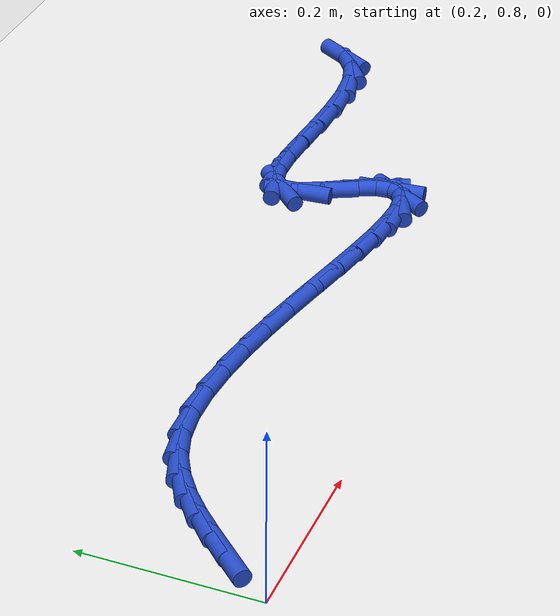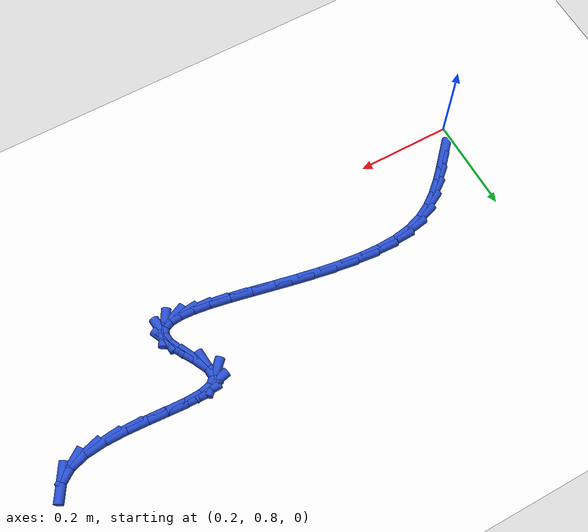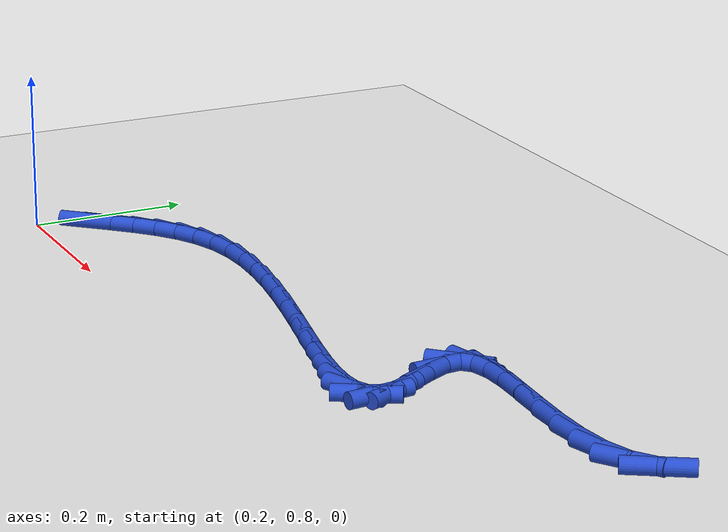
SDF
<sdf version="1.6">
 <world name="default">
  <model name="ground_plane">
   <static>1</static>
   <link name="link">
    <collision name="collision">
     <geometry><plane><normal>0 0 1</normal><size>100 100</size></plane></geometry>
     <surface><friction><ode><mu>100</mu><mu2>50</mu2></ode></friction></surface>
    </collision>
    <visual name="visual">
     <cast_shadows>0</cast_shadows>
     <geometry><plane><normal>0 0 1</normal><size>100 100</size></plane></geometry>
     <material>
      <script><uri>file://media/materials/scripts/gazebo.material</uri><name>Gazebo/WhiteGlow</name></script>
     </material>
    </visual>
   </link>
  </model>
  <model name="line">
   <link name="link_29">
    <pose>0.23982771956075666 0.8588007215189424 0.01 0 1.57 0.8241641632022959</pose>
    <collision name="collision">
     <geometry><cylinder><radius>0.01</radius><length>0.08</length></cylinder></geometry>
    </collision>
    <visual name="visual">
     <material>
      <script><name>Gazebo/Blue</name><uri>file://media/materials/scripts/gazebo.material</uri></script>
     </material>
     <geometry><cylinder><radius>0.01</radius><length>0.08</length></cylinder></geometry>
    </visual>
   </link>
   <link name="link_30">
    <pose>0.2616917057526232 0.8824291506320963 0.01 0 1.57 0.796854420594403</pose>
    <collision name="collision">
     <geometry><cylinder><radius>0.01</radius><length>0.08</length></cylinder></geometry>
    </collision>
    <visual name="visual">
     <material>
      <script><name>Gazebo/Blue</name><uri>file://media/materials/scripts/gazebo.material</uri></script>
     </material>
     <geometry><cylinder><radius>0.01</radius><length>0.08</length></cylinder></geometry>
    </visual>
   </link>
   <link name="link_31">
    <pose>0.28399439541838345 0.9052487959894997 0.01 0 1.57 0.7316204973585401</pose>
    <collision name="collision">
     <geometry><cylinder><radius>0.01</radius><length>0.08</length></cylinder></geometry>
    </collision>
    <visual name="visual">
     <material>
      <script><name>Gazebo/Blue</name><uri>file://media/materials/scripts/gazebo.material</uri></script>
     </material>
     <geometry><cylinder><radius>0.01</radius><length>0.08</length></cylinder></geometry>
    </visual>
   </link>
   <link name="link_32">
    <pose>0.3075503212400427 0.926398250482711 0.01 0 1.57 0.6283479717193791</pose>
    <collision name="collision">
     <geometry><cylinder><radius>0.01</radius><length>0.08</length></cylinder></geometry>
    </collision>
    <visual name="visual">
     <material>
      <script><name>Gazebo/Blue</name><uri>file://media/materials/scripts/gazebo.material</uri></script>
     </material>
     <geometry><cylinder><radius>0.01</radius><length>0.08</length></cylinder></geometry>
    </visual>
   </link>
   <link name="link_33">
    <pose>0.3331740158996063 0.945016107003289 0.01 0 1.57 0.49054853260155695</pose>
    <collision name="collision">
     <geometry><cylinder><radius>0.01</radius><length>0.08</length></cylinder></geometry>
    </collision>
    <visual name="visual">
     <material>
      <script><name>Gazebo/Blue</name><uri>file://media/materials/scripts/gazebo.material</uri></script>
     </material>
     <geometry><cylinder><radius>0.01</radius><length>0.08</length></cylinder></geometry>
    </visual>
   </link>
   <link name="link_34">
    <pose>0.3616800120790796 0.9602409584427918 0.01 0 1.57 0.32833620386717977</pose>
    <collision name="collision">
     <geometry><cylinder><radius>0.01</radius><length>0.08</length></cylinder></geometry>
    </collision>
    <visual name="visual">
     <material>
      <script><name>Gazebo/Blue</name><uri>file://media/materials/scripts/gazebo.material</uri></script>
     </material>
     <geometry><cylinder><radius>0.01</radius><length>0.08</length></cylinder></geometry>
    </visual>
   </link>
   <link name="link_35">
    <pose>0.393882842460468 0.9712113976927781 0.01 0 1.57 0.16401270620343095</pose>
    <collision name="collision">
     <geometry><cylinder><radius>0.01</radius><length>0.08</length></cylinder></geometry>
    </collision>
    <visual name="visual">
     <material>
      <script><name>Gazebo/Blue</name><uri>file://media/materials/scripts/gazebo.material</uri></script>
     </material>
     <geometry><cylinder><radius>0.01</radius><length>0.08</length></cylinder></geometry>
    </visual>
   </link>
   <link name="link_36">
    <pose>0.4303977751358432 0.9772545957248768 0.01 0 1.57 0.03739849756958112</pose>
    <collision name="collision">
     <geometry><cylinder><radius>0.01</radius><length>0.08</length></cylinder></geometry>
    </collision>
    <visual name="visual">
     <material>
      <script><name>Gazebo/Blue</name><uri>file://media/materials/scripts/gazebo.material</uri></script>
     </material>
     <geometry><cylinder><radius>0.01</radius><length>0.08</length></cylinder></geometry>
    </visual>
   </link>
   <link name="link_37">
    <pose>0.470714350804725 0.9787630784262082 0.01 0 1.57 -0.05225091464127412</pose>
    <collision name="collision">
     <geometry><cylinder><radius>0.01</radius><length>0.08</length></cylinder></geometry>
    </collision>
    <visual name="visual">
     <material>
      <script><name>Gazebo/Blue</name><uri>file://media/materials/scripts/gazebo.material</uri></script>
     </material>
     <geometry><cylinder><radius>0.01</radius><length>0.08</length></cylinder></geometry>
    </visual>
   </link>
   <link name="link_38">
    <pose>0.5139271915559751 0.9765031109087444 0.01 0 1.57 -0.11588036690892356</pose>
    <collision name="collision">
     <geometry><cylinder><radius>0.01</radius><length>0.08</length></cylinder></geometry>
    </collision>
    <visual name="visual">
     <material>
      <script><name>Gazebo/Blue</name><uri>file://media/materials/scripts/gazebo.material</uri></script>
     </material>
     <geometry><cylinder><radius>0.01</radius><length>0.08</length></cylinder></geometry>
    </visual>
   </link>
   <link name="link_39">
    <pose>0.5591304921454062 0.9712413626997422 0.01 0 1.57 -0.16056706052890735</pose>
    <collision name="collision">
     <geometry><cylinder><radius>0.01</radius><length>0.08</length></cylinder></geometry>
    </collision>
    <visual name="visual">
     <material>
      <script><name>Gazebo/Blue</name><uri>file://media/materials/scripts/gazebo.material</uri></script>
     </material>
     <geometry><cylinder><radius>0.01</radius><length>0.08</length></cylinder></geometry>
    </visual>
   </link>
   <link name="link_40">
    <pose>0.6054184473288297 0.9637445033264574 0.01 0 1.57 -0.1905978855281085</pose>
    <collision name="collision">
     <geometry><cylinder><radius>0.01</radius><length>0.08</length></cylinder></geometry>
    </collision>
    <visual name="visual">
     <material>
      <script><name>Gazebo/Blue</name><uri>file://media/materials/scripts/gazebo.material</uri></script>
     </material>
     <geometry><cylinder><radius>0.01</radius><length>0.08</length></cylinder></geometry>
    </visual>
   </link>
   <link name="link_41">
    <pose>0.651885251862058 0.954779202316149 0.01 0 1.57 -0.20828390359519258</pose>
    <collision name="collision">
     <geometry><cylinder><radius>0.01</radius><length>0.08</length></cylinder></geometry>
    </collision>
    <visual name="visual">
     <material>
      <script><name>Gazebo/Blue</name><uri>file://media/materials/scripts/gazebo.material</uri></script>
     </material>
     <geometry><cylinder><radius>0.01</radius><length>0.08</length></cylinder></geometry>
    </visual>
   </link>
   <link name="link_42">
    <pose>0.6976251005009027 0.9451121291960721 0.01 0 1.57 -0.21435678839201483</pose>
    <collision name="collision">
     <geometry><cylinder><radius>0.01</radius><length>0.08</length></cylinder></geometry>
    </collision>
    <visual name="visual">
     <material>
      <script><name>Gazebo/Blue</name><uri>file://media/materials/scripts/gazebo.material</uri></script>
     </material>
     <geometry><cylinder><radius>0.01</radius><length>0.08</length></cylinder></geometry>
    </visual>
   </link>
   <link name="link_43">
    <pose>0.7417321880011751 0.9355099534934844 0.01 0 1.57 -0.2079417215046066</pose>
    <collision name="collision">
     <geometry><cylinder><radius>0.01</radius><length>0.08</length></cylinder></geometry>
    </collision>
    <visual name="visual">
     <material>
      <script><name>Gazebo/Blue</name><uri>file://media/materials/scripts/gazebo.material</uri></script>
     </material>
     <geometry><cylinder><radius>0.01</radius><length>0.08</length></cylinder></geometry>
    </visual>
   </link>
   <link name="link_44">
    <pose>0.7833007091186882 0.9267393447356425 0.01 0 1.57 -0.18595841066379873</pose>
    <collision name="collision">
     <geometry><cylinder><radius>0.01</radius><length>0.08</length></cylinder></geometry>
    </collision>
    <visual name="visual">
     <material>
      <script><name>Gazebo/Blue</name><uri>file://media/materials/scripts/gazebo.material</uri></script>
     </material>
     <geometry><cylinder><radius>0.01</radius><length>0.08</length></cylinder></geometry>
    </visual>
   </link>
   <link name="link_45">
    <pose>0.8214248586092534 0.9195669724498038 0.01 0 1.57 -0.14139251127535413</pose>
    <collision name="collision">
     <geometry><cylinder><radius>0.01</radius><length>0.08</length></cylinder></geometry>
    </collision>
    <visual name="visual">
     <material>
      <script><name>Gazebo/Blue</name><uri>file://media/materials/scripts/gazebo.material</uri></script>
     </material>
     <geometry><cylinder><radius>0.01</radius><length>0.08</length></cylinder></geometry>
    </visual>
   </link>
   <link name="link_46">
    <pose>0.8551988312286829 0.9147595061632251 0.01 0 1.57 -0.05869857990196866</pose>
    <collision name="collision">
     <geometry><cylinder><radius>0.01</radius><length>0.08</length></cylinder></geometry>
    </collision>
    <visual name="visual">
     <material>
      <script><name>Gazebo/Blue</name><uri>file://media/materials/scripts/gazebo.material</uri></script>
     </material>
     <geometry><cylinder><radius>0.01</radius><length>0.08</length></cylinder></geometry>
    </visual>
   </link>
   <link name="link_47">
    <pose>0.8837168217327889 0.9130836154031634 0.01 0 1.57 0.0990810999384162</pose>
    <collision name="collision">
     <geometry><cylinder><radius>0.01</radius><length>0.08</length></cylinder></geometry>
    </collision>
    <visual name="visual">
     <material>
      <script><name>Gazebo/Blue</name><uri>file://media/materials/scripts/gazebo.material</uri></script>
     </material>
     <geometry><cylinder><radius>0.01</radius><length>0.08</length></cylinder></geometry>
    </visual>
   </link>
   <link name="link_48">
    <pose>0.9060730248773824 0.915305969696875 0.01 0 1.57 0.4232560459164627</pose>
    <collision name="collision">
     <geometry><cylinder><radius>0.01</radius><length>0.08</length></cylinder></geometry>
    </collision>
    <visual name="visual">
     <material>
      <script><name>Gazebo/Blue</name><uri>file://media/materials/scripts/gazebo.material</uri></script>
     </material>
     <geometry><cylinder><radius>0.01</radius><length>0.08</length></cylinder></geometry>
    </visual>
   </link>
   <link name="link_49">
    <pose>0.9213616354182765 0.9221932385716181 0.01 0 1.57 1.034931450594322</pose>
    <collision name="collision">
     <geometry><cylinder><radius>0.01</radius><length>0.08</length></cylinder></geometry>
    </collision>
    <visual name="visual">
     <material>
      <script><name>Gazebo/Blue</name><uri>file://media/materials/scripts/gazebo.material</uri></script>
     </material>
     <geometry><cylinder><radius>0.01</radius><length>0.08</length></cylinder></geometry>
    </visual>
   </link>
   <link name="link_50">
    <pose>0.9286768481112821 0.9345120915546483 0.01 0 1.57 -1.4865343956009753</pose>
    <collision name="collision">
     <geometry><cylinder><radius>0.01</radius><length>0.08</length></cylinder></geometry>
    </collision>
    <visual name="visual">
     <material>
      <script><name>Gazebo/Blue</name><uri>file://media/materials/scripts/gazebo.material</uri></script>
     </material>
     <geometry><cylinder><radius>0.01</radius><length>0.08</length></cylinder></geometry>
    </visual>
   </link>
   <link name="link_51">
    <pose>0.927112857712212 0.9530291981732235 0.01 0 1.57 -1.1547413814609242</pose>
    <collision name="collision">
     <geometry><cylinder><radius>0.01</radius><length>0.08</length></cylinder></geometry>
    </collision>
    <visual name="visual">
     <material>
      <script><name>Gazebo/Blue</name><uri>file://media/materials/scripts/gazebo.material</uri></script>
     </material>
     <geometry><cylinder><radius>0.01</radius><length>0.08</length></cylinder></geometry>
    </visual>
   </link>
   <link name="link_52">
    <pose>0.9158919618264509 0.9784245140293565 0.01 0 1.57 -1.0504726478481072</pose>
    <collision name="collision">
     <geometry><cylinder><radius>0.01</radius><length>0.08</length></cylinder></geometry>
    </collision>
    <visual name="visual">
     <material>
      <script><name>Gazebo/Blue</name><uri>file://media/materials/scripts/gazebo.material</uri></script>
     </material>
     <geometry><cylinder><radius>0.01</radius><length>0.08</length></cylinder></geometry>
    </visual>
   </link>
   <link name="link_53">
    <pose>0.8987671970805831 1.0083110983516304 0.01 0 1.57 -1.1200001222560645</pose>
    <collision name="collision">
     <geometry><cylinder><radius>0.01</radius><length>0.08</length></cylinder></geometry>
    </collision>
    <visual name="visual">
     <material>
      <script><name>Gazebo/Blue</name><uri>file://media/materials/scripts/gazebo.material</uri></script>
     </material>
     <geometry><cylinder><radius>0.01</radius><length>0.08</length></cylinder></geometry>
    </visual>
   </link>
   <link name="link_54">
    <pose>0.8851297245689341 1.0364855152224364 0.01 0 1.57 -1.5068946399165088</pose>
    <collision name="collision">
     <geometry><cylinder><radius>0.01</radius><length>0.08</length></cylinder></geometry>
    </collision>
    <visual name="visual">
     <material>
      <script><name>Gazebo/Blue</name><uri>file://media/materials/scripts/gazebo.material</uri></script>
     </material>
     <geometry><cylinder><radius>0.01</radius><length>0.08</length></cylinder></geometry>
    </visual>
   </link>
   <link name="link_55">
    <pose>0.8838091367168668 1.0571233093020576 0.01 0 1.57 0.788141834081551</pose>
    <collision name="collision">
     <geometry><cylinder><radius>0.01</radius><length>0.08</length></cylinder></geometry>
    </collision>
    <visual name="visual">
     <material>
      <script><name>Gazebo/Blue</name><uri>file://media/materials/scripts/gazebo.material</uri></script>
     </material>
     <geometry><cylinder><radius>0.01</radius><length>0.08</length></cylinder></geometry>
    </visual>
   </link>
   <link name="link_56">
    <pose>0.8961055142858649 1.0694873470995305 0.01 0 1.57 0.2440385374236169</pose>
    <collision name="collision">
     <geometry><cylinder><radius>0.01</radius><length>0.08</length></cylinder></geometry>
    </collision>
    <visual name="visual">
     <material>
      <script><name>Gazebo/Blue</name><uri>file://media/materials/scripts/gazebo.material</uri></script>
     </material>
     <geometry><cylinder><radius>0.01</radius><length>0.08</length></cylinder></geometry>
    </visual>
   </link>
   <link name="link_57">
    <pose>0.9196169722506263 1.0753417318934446 0.01 0 1.57 0.03485476970271121</pose>
    <collision name="collision">
     <geometry><cylinder><radius>0.01</radius><length>0.08</length></cylinder></geometry>
    </collision>
    <visual name="visual">
     <material>
      <script><name>Gazebo/Blue</name><uri>file://media/materials/scripts/gazebo.material</uri></script>
     </material>
     <geometry><cylinder><radius>0.01</radius><length>0.08</length></cylinder></geometry>
    </visual>
   </link>
   <link name="link_58">
    <pose>0.9519158842268163 1.0764679591365525 0.01 0 1.57 -0.047055105347707855</pose>
    <collision name="collision">
     <geometry><cylinder><radius>0.01</radius><length>0.08</length></cylinder></geometry>
    </collision>
    <visual name="visual">
     <material>
      <script><name>Gazebo/Blue</name><uri>file://media/materials/scripts/gazebo.material</uri></script>
     </material>
     <geometry><cylinder><radius>0.01</radius><length>0.08</length></cylinder></geometry>
    </visual>
   </link>
   <link name="link_59">
    <pose>0.990574623830099 1.0746475242816054 0.01 0 1.57 -0.06998496536472172</pose>
    <collision name="collision">
     <geometry><cylinder><radius>0.01</radius><length>0.08</length></cylinder></geometry>
    </collision>
    <visual name="visual">
     <material>
      <script><name>Gazebo/Blue</name><uri>file://media/materials/scripts/gazebo.material</uri></script>
     </material>
     <geometry><cylinder><radius>0.01</radius><length>0.08</length></cylinder></geometry>
    </visual>
   </link>
   <link name="link_60">
    <pose>1.0331655646761408 1.0716619227813566 0.01 0 1.57 -0.05367885135740392</pose>
    <collision name="collision">
     <geometry><cylinder><radius>0.01</radius><length>0.08</length></cylinder></geometry>
    </collision>
    <visual name="visual">
     <material>
      <script><name>Gazebo/Blue</name><uri>file://media/materials/scripts/gazebo.material</uri></script>
     </material>
     <geometry><cylinder><radius>0.01</radius><length>0.08</length></cylinder></geometry>
    </visual>
   </link>
   <link name="link_61">
    <pose>1.077261080380606 1.0692926500885571 0.01 0 1.57 0.0006613373543472396</pose>
    <collision name="collision">
     <geometry><cylinder><radius>0.01</radius><length>0.08</length></cylinder></geometry>
    </collision>
    <visual name="visual">
     <material>
      <script><name>Gazebo/Blue</name><uri>file://media/materials/scripts/gazebo.material</uri></script>
     </material>
     <geometry><cylinder><radius>0.01</radius><length>0.08</length></cylinder></geometry>
    </visual>
   </link>
   <link name="link_62">
    <pose>1.1204335445591598 1.0693212016559601 0.01 0 1.57 0.10527689938691903</pose>
    <collision name="collision">
     <geometry><cylinder><radius>0.01</radius><length>0.08</length></cylinder></geometry>
    </collision>
    <visual name="visual">
     <material>
      <script><name>Gazebo/Blue</name><uri>file://media/materials/scripts/gazebo.material</uri></script>
     </material>
     <geometry><cylinder><radius>0.01</radius><length>0.08</length></cylinder></geometry>
    </visual>
   </link>
   <link name="link_63">
    <pose>1.1602553308274681 1.0735290729363176 0.01 0 1.57 0.290260967126054</pose>
    <collision name="collision">
     <geometry><cylinder><radius>0.01</radius><length>0.08</length></cylinder></geometry>
    </collision>
    <visual name="visual">
     <material>
      <script><name>Gazebo/Blue</name><uri>file://media/materials/scripts/gazebo.material</uri></script>
     </material>
     <geometry><cylinder><radius>0.01</radius><length>0.08</length></cylinder></geometry>
    </visual>
   </link>
   <link name="link_64">
    <pose>1.1942988128011955 1.0836977593823813 0.01 0 1.57 0.6061295584787272</pose>
    <collision name="collision">
     <geometry><cylinder><radius>0.01</radius><length>0.08</length></cylinder></geometry>
    </collision>
    <visual name="visual">
     <material>
      <script><name>Gazebo/Blue</name><uri>file://media/materials/scripts/gazebo.material</uri></script>
     </material>
     <geometry><cylinder><radius>0.01</radius><length>0.08</length></cylinder></geometry>
    </visual>
   </link>
   <link name="link_65">
    <pose>1.2201370600332901 1.1016081417591619 0.01 0 1.57 1.0193299710873618</pose>
    <collision name="collision">
     <geometry><cylinder><radius>0.01</radius><length>0.08</length></cylinder></geometry>
    </collision>
    <visual name="visual">
     <material>
      <script><name>Gazebo/Blue</name><uri>file://media/materials/scripts/gazebo.material</uri></script>
     </material>
     <geometry><cylinder><radius>0.01</radius><length>0.08</length></cylinder></geometry>
    </visual>
   </link>
  </model>
 </world>
</sdf>
